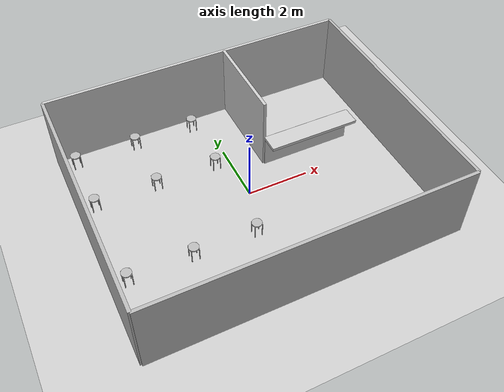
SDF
<sdf version="1.6">
 <world name="restaurant_world">
  <include><uri>model://sun</uri></include>
  <gravity>0 0 -9.8</gravity>
  <include><uri>model://ground_plane</uri></include>
  <model name="wall_north">
   <static>true</static>
   <link name="link">
    <collision name="collision"><geometry><box><size>10 0.1 2.5</size></box></geometry></collision>
    <visual name="visual">
     <geometry><box><size>10 0.1 2.5</size></box></geometry>
     <material><ambient>0.8 0.8 0.8 1</ambient></material>
    </visual>
   </link>
   <pose>0 4 1.25 0 0 0</pose>
  </model>
  <model name="wall_south">
   <static>true</static>
   <link name="link">
    <collision name="collision"><geometry><box><size>10 0.1 2.5</size></box></geometry></collision>
    <visual name="visual"><geometry><box><size>10 0.1 2.5</size></box></geometry></visual>
   </link>
   <pose>0 -4 1.25 0 0 0</pose>
  </model>
  <model name="wall_east">
   <static>true</static>
   <link name="link">
    <collision name="collision"><geometry><box><size>0.1 8 2.5</size></box></geometry></collision>
    <visual name="visual"><geometry><box><size>0.1 8 2.5</size></box></geometry></visual>
   </link>
   <pose>5 0 1.25 0 0 0</pose>
  </model>
  <model name="wall_west">
   <static>true</static>
   <link name="link">
    <collision name="collision"><geometry><box><size>0.1 8 2.5</size></box></geometry></collision>
    <visual name="visual"><geometry><box><size>0.1 8 2.5</size></box></geometry></visual>
   </link>
   <pose>-5 0 1.25 0 0 0</pose>
  </model>
  <model name="kitchen_west">
   <static>true</static>
   <link name="link">
    <collision name="collision"><geometry><box><size>0.1 3 2.5</size></box></geometry></collision>
    <visual name="visual">
     <geometry><box><size>0.1 3 2.5</size></box></geometry>
     <material><ambient>0.8 0.8 0.8 1</ambient></material>
    </visual>
   </link>
   <pose>1 2.5 1.25 0 0 0</pose>
  </model>
  <model name="kitchen_south">
   <static>true</static>
   <link name="link">
    <collision name="collision"><geometry><box><size>3 0.1 1.1</size></box></geometry></collision>
    <visual name="visual">
     <geometry><box><size>3 0.1 1.1</size></box></geometry>
     <material><ambient>0.8 0.8 0.8 1</ambient></material>
    </visual>
   </link>
   <pose>2.5 1 0.55 0 0 0</pose>
  </model>
  <model name="kitchen_bar">
   <static>true</static>
   <link name="link">
    <collision name="collision"><geometry><box><size>3 0.6 0.1</size></box></geometry></collision>
    <visual name="visual">
     <geometry><box><size>3 0.6 0.1</size></box></geometry>
     <material><ambient>0.8 0.8 0.8 1</ambient></material>
    </visual>
   </link>
   <pose>2.5 0.7 1.1 0 0 0</pose>
  </model>
  <model name="charge_area">
   <static>true</static>
   <link name="link">
    <collision name="collision"><geometry><box><size>0.1 1 1</size></box></geometry></collision>
    <visual name="visual">
     <geometry><box><size>0.1 1 1</size></box></geometry>
     <material><ambient>0.8 0.8 0.8 1</ambient></material>
    </visual>
   </link>
   <pose>4 -3.5 0.5 0 0 0</pose>
  </model>
  <include><uri>model://my_stool</uri><name>stool_11</name><pose>-4.5 -3.5 0 0 0 0</pose></include>
  <include><uri>model://my_stool</uri><name>stool_12</name><pose>-4.5 -1.5 0 0 0 0</pose></include>
  <include><uri>model://my_stool</uri><name>stool_21</name><pose>-2.5 -3.5 0 0 0 0</pose></include>
  <include><uri>model://my_stool</uri><name>stool_22</name><pose>-2.5 -1.5 0 0 0 0</pose></include>
  <include><uri>model://my_stool</uri><name>stool_31</name><pose>-0.5 -3.5 0 0 0 0</pose></include>
  <include><uri>model://my_stool</uri><name>stool_32</name><pose>-0.5 -1.5 0 0 0 0</pose></include>
  <include><uri>model://my_stool</uri><name>stool_41</name><pose>-4.5 3.5 0 0 0 0</pose></include>
  <include><uri>model://my_stool</uri><name>stool_42</name><pose>-4.5 1.5 0 0 0 0</pose></include>
  <include><uri>model://my_stool</uri><name>stool_51</name><pose>-2.5 3.5 0 0 0 0</pose></include>
  <include><uri>model://my_stool</uri><name>stool_52</name><pose>-2.5 1.5 0 0 0 0</pose></include>
  <include><uri>model://my_stool</uri><name>stool_61</name><pose>-0.5 3.5 0 0 0 0</pose></include>
  <include><uri>model://my_stool</uri><name>stool_62</name><pose>-0.5 1.5 0 0 0 0</pose></include>
 </world>
</sdf>

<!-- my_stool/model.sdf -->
<sdf version="1.6">
  <model name="my_stool">
    <static>true</static>

    <link name="stool">
      <!-- 좌판 -->
      <collision name="seat_col">
        <pose>0 0 0.48 0 0 0</pose>
        <geometry><cylinder><radius>0.16</radius><length>0.04</length></cylinder></geometry>
      </collision>
      <visual name="seat_vis">
        <pose>0 0 0.48 0 0 0</pose>
        <geometry><cylinder><radius>0.16</radius><length>0.04</length></cylinder></geometry>
      </visual>

      <!-- 다리 4개 -->
      <!-- leg1 -->
      <collision name="leg1_col">
        <pose> 0.12  0.12 0.24 0 0 0</pose>
        <geometry><cylinder><radius>0.015</radius><length>0.48</length></cylinder></geometry>
      </collision>
      <visual name="leg1_vis">
        <pose> 0.12  0.12 0.24 0 0 0</pose>
        <geometry><cylinder><radius>0.015</radius><length>0.48</length></cylinder></geometry>
      </visual>

      <!-- leg2 -->
      <collision name="leg2_col">
        <pose>-0.12  0.12 0.24 0 0 0</pose>
        <geometry><cylinder><radius>0.015</radius><length>0.48</length></cylinder></geometry>
      </collision>
      <visual name="leg2_vis">
        <pose>-0.12  0.12 0.24 0 0 0</pose>
        <geometry><cylinder><radius>0.015</radius><length>0.48</length></cylinder></geometry>
      </visual>

      <!-- leg3 -->
      <collision name="leg3_col">
        <pose> 0.12 -0.12 0.24 0 0 0</pose>
        <geometry><cylinder><radius>0.015</radius><length>0.48</length></cylinder></geometry>
      </collision>
      <visual name="leg3_vis">
        <pose> 0.12 -0.12 0.24 0 0 0</pose>
        <geometry><cylinder><radius>0.015</radius><length>0.48</length></cylinder></geometry>
      </visual>

      <!-- leg4 -->
      <collision name="leg4_col">
        <pose>-0.12 -0.12 0.24 0 0 0</pose>
        <geometry><cylinder><radius>0.015</radius><length>0.48</length></cylinder></geometry>
      </collision>
      <visual name="leg4_vis">
        <pose>-0.12 -0.12 0.24 0 0 0</pose>
        <geometry><cylinder><radius>0.015</radius><length>0.48</length></cylinder></geometry>
      </visual>
    </link>
  </model>
</sdf>
